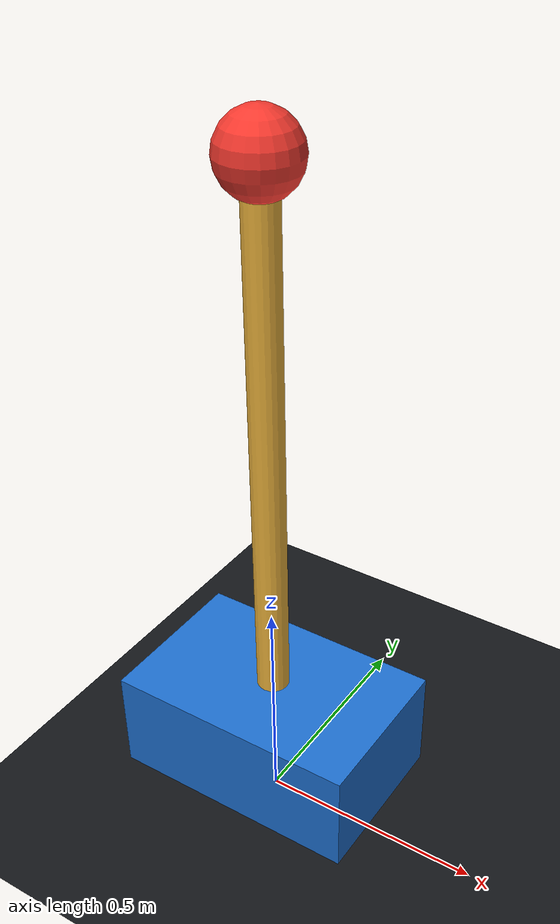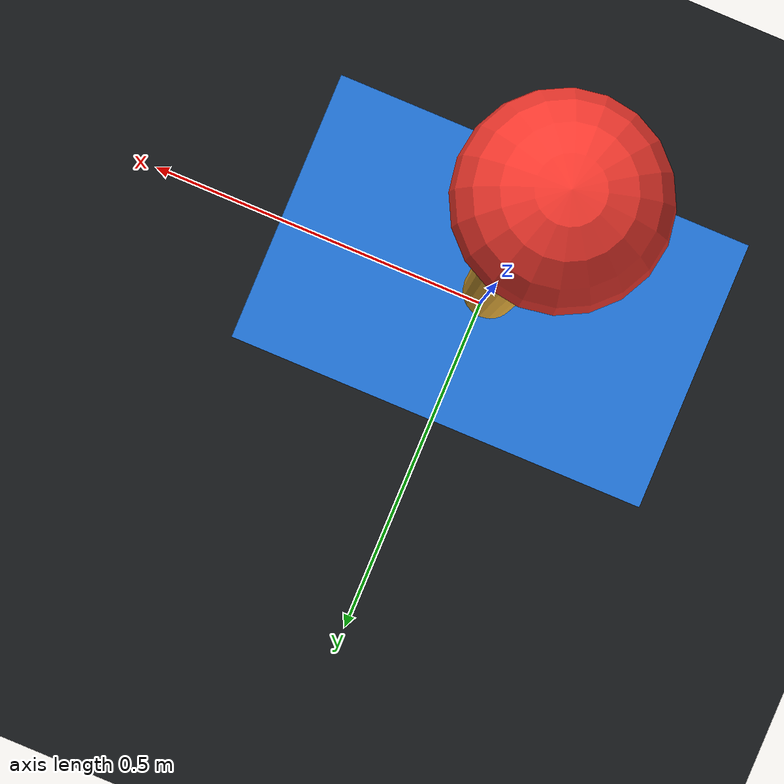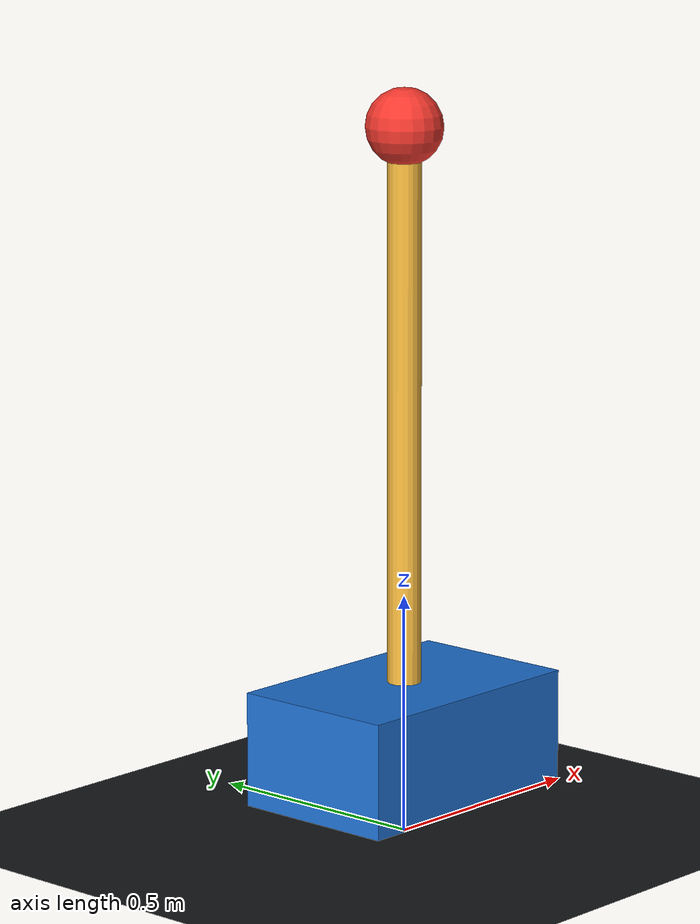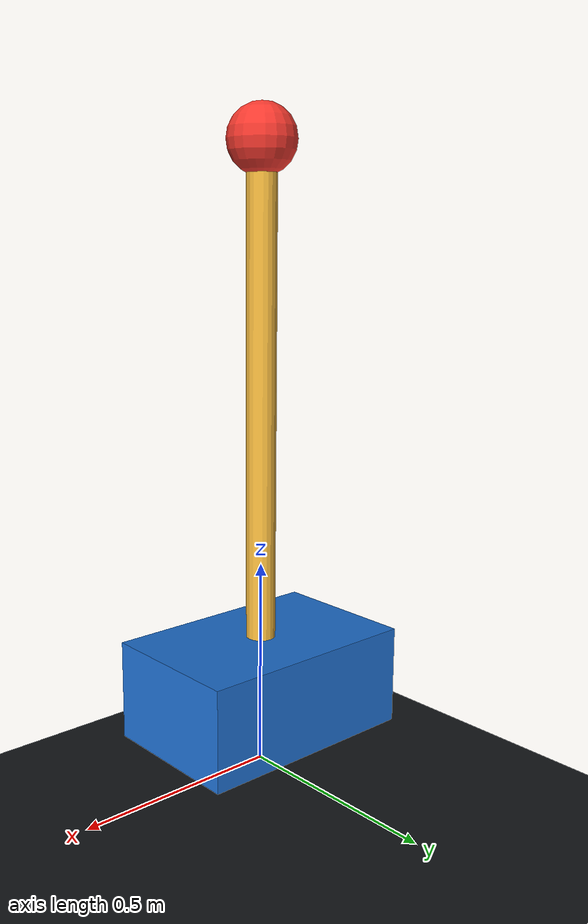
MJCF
<mujoco model="nano_cartpole">
  <compiler angle="degree" coordinate="local"/>
  <option timestep="0.005" gravity="0 0 -9.81"/>

  <default>
    <geom friction="0.8 0.1 0.1" density="500" rgba="0.7 0.7 0.7 1"/>
    <joint damping="0.03"/>
  </default>

  <worldbody>
    <geom name="floor" type="plane" pos="0 0 -0.05" size="8 2 0.1" rgba="0.08 0.09 0.10 1"/>

    <body name="cart" pos="0 0 0.20">
      <joint name="slide" type="slide" axis="1 0 0" limited="true" range="-2.8 2.8" damping="0.12"/>
      <geom name="cart_geom" type="box" size="0.28 0.18 0.12" mass="1.0" rgba="0.12 0.44 0.82 1"/>

      <body name="pole" pos="0 0 0.12">
        <joint name="hinge" type="hinge" axis="0 1 0" damping="0.02"/>
        <geom name="pole_geom" type="capsule" fromto="0 0 0 0 0 1.15" size="0.035" mass="0.18" rgba="0.95 0.72 0.24 1"/>
        <body name="tip" pos="0 0 1.15">
          <geom name="tip_geom" type="sphere" size="0.08" mass="0.03" rgba="0.95 0.22 0.18 1"/>
          <site name="tip_site" pos="0 0 0" size="0.025" rgba="1 1 1 1"/>
        </body>
      </body>
    </body>
  </worldbody>

  <actuator>
    <motor name="cart_motor" joint="slide" gear="80" ctrllimited="true" ctrlrange="-1 1"/>
  </actuator>
</mujoco>
